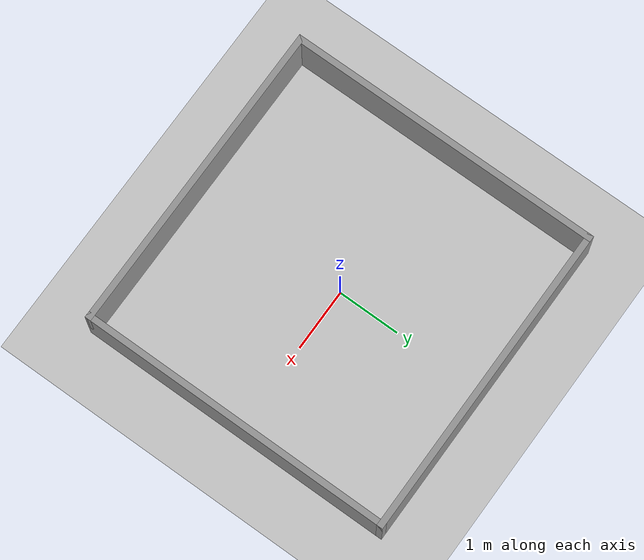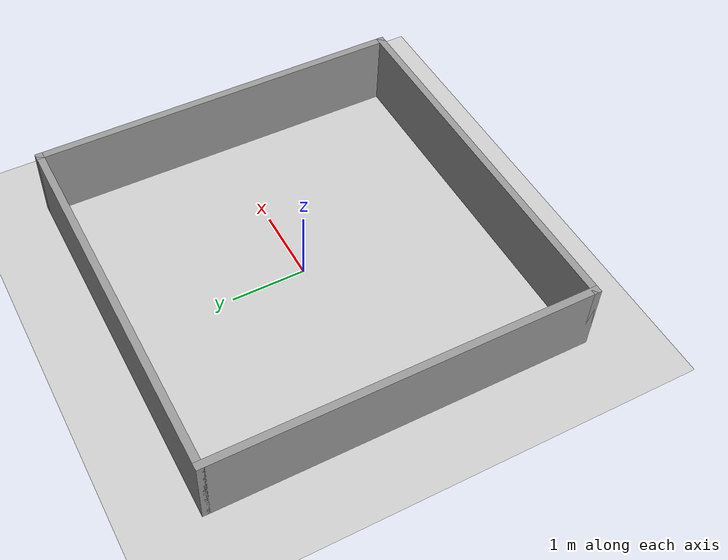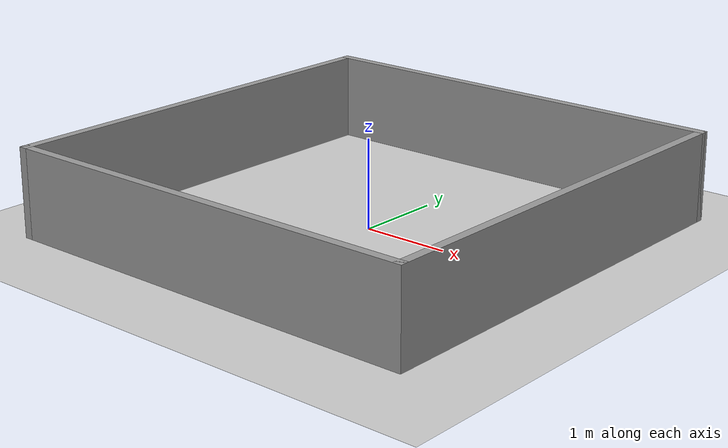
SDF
<?xml version="1.0" ?>
<sdf version="1.5">
  <world name="default">
    <!-- Sun -->
    <include>
      <uri>model://sun</uri>
    </include>
    <!-- Ground Plane -->
    <include>
      <uri>model://ground_plane</uri>
    </include>

    <!-- Walls -->
    <!-- Wall 1 (X+) -->
    <model name="wall_1">
      <pose>2.5 0 0.5 0 0 0</pose>
      <static>true</static>
      <link name="link">
        <collision name="collision">
          <geometry>
            <box>
              <size>0.1 5.1 1</size>
            </box>
          </geometry>
        </collision>
        <visual name="visual">
          <geometry>
            <box>
              <size>0.1 5.1 1</size>
            </box>
          </geometry>
          <material>
            <script>
              <uri>file://media/materials/scripts/gazebo.material</uri>
              <name>Gazebo/Grey</name>
            </script>
          </material>
        </visual>
      </link>
    </model>

    <!-- Wall 2 (X-) -->
    <model name="wall_2">
      <pose>-2.5 0 0.5 0 0 0</pose>
      <static>true</static>
      <link name="link">
        <collision name="collision">
          <geometry>
            <box>
              <size>0.1 5.1 1</size>
            </box>
          </geometry>
        </collision>
        <visual name="visual">
          <geometry>
            <box>
              <size>0.1 5.1 1</size>
            </box>
          </geometry>
          <material>
            <script>
              <uri>file://media/materials/scripts/gazebo.material</uri>
              <name>Gazebo/Grey</name>
            </script>
          </material>
        </visual>
      </link>
    </model>

    <!-- Wall 3 (Y+) -->
    <model name="wall_3">
      <pose>0 2.5 0.5 0 0 1.570796</pose>
      <static>true</static>
      <link name="link">
        <collision name="collision">
          <geometry>
            <box>
              <size>0.1 5.1 1</size>
            </box>
          </geometry>
        </collision>
        <visual name="visual">
          <geometry>
            <box>
              <size>0.1 5.1 1</size>
            </box>
          </geometry>
          <material>
            <script>
              <uri>file://media/materials/scripts/gazebo.material</uri>
              <name>Gazebo/Grey</name>
            </script>
          </material>
        </visual>
      </link>
    </model>

    <!-- Wall 4 (Y-) -->
    <model name="wall_4">
      <pose>0 -2.5 0.5 0 0 1.570796</pose>
      <static>true</static>
      <link name="link">
        <collision name="collision">
          <geometry>
            <box>
              <size>0.1 5.1 1</size>
            </box>
          </geometry>
        </collision>
        <visual name="visual">
          <geometry>
            <box>
              <size>0.1 5.1 1</size>
            </box>
          </geometry>
          <material>
            <script>
              <uri>file://media/materials/scripts/gazebo.material</uri>
              <name>Gazebo/Grey</name>
            </script>
          </material>
        </visual>
      </link>
    </model>

  </world>
</sdf>
